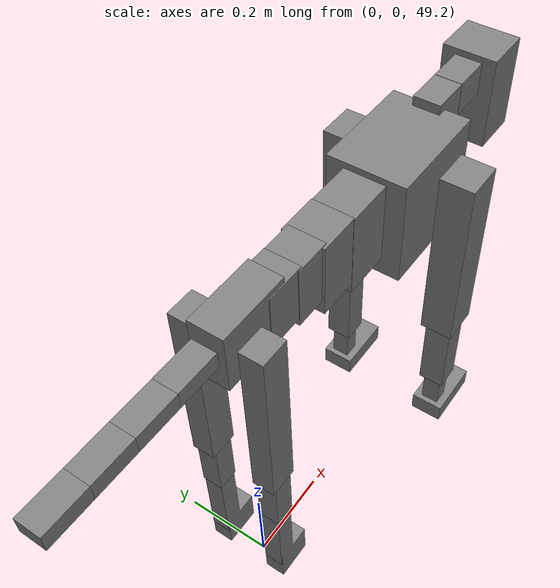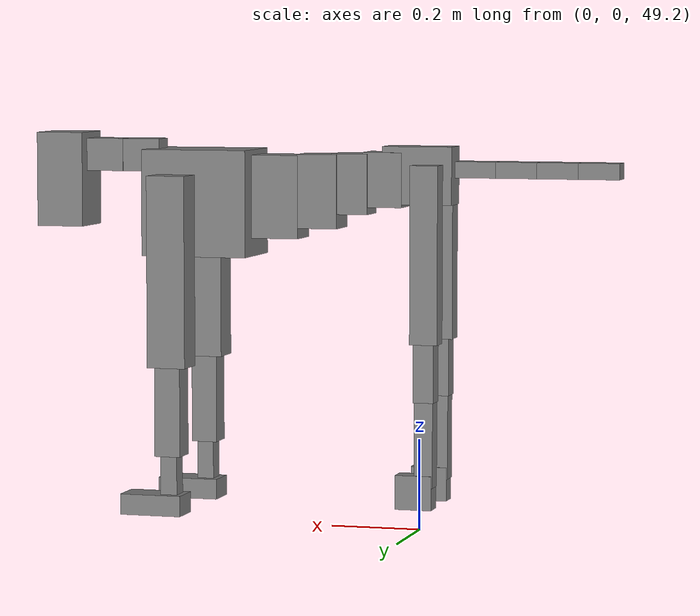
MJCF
<mujoco model="dog">

    <default>
        <joint armature="0.02" stiffness="1" damping="0.2" limited="true"/>
        <geom condim="3" friction="1 0.05 0.05" margin="0.01"/>
        <motor ctrllimited="true" ctrlrange="-1.0 1.0" forcelimited="true" gear="50"/>
    </default>

    <compiler inertiafromgeom="true" angle="radian"/>

    <option timestep="0.016" iterations="50" tolerance="1e-10" solver="Newton" jacobian="dense" cone="pyramidal"/>

    <size nconmax="20000" njmax="60000" nstack="5000000"/>
    <visual>
        <map force="0.1" zfar="30"/>
        <rgba haze="0.15 0.25 0.35 1"/>
        <quality shadowsize="2048"/>
        <global offwidth="800" offheight="800"/>
    </visual>

    <asset>
        <texture type="skybox" builtin="gradient" rgb1="0.3 0.5 0.7" rgb2="0 0 0" width="512" height="512"/>
        <texture name="texplane" type="2d" builtin="checker" rgb1=".2 .3 .4" rgb2=".1 0.15 0.2" width="512" height="512"
                 mark="cross" markrgb=".8 .8 .8"/>
        <texture name="texgeom" type="cube" builtin="flat" mark="cross" width="127" height="1278" rgb1="0.8 0.6 0.4"
                 rgb2="0.8 0.6 0.4" markrgb="1 1 1" random="0.01"/>

        <material name="matplane" reflectance="0.3" texture="texplane" texrepeat="1 1" texuniform="true"/>
        <material name="matgeom" texture="texgeom" texuniform="true" rgba="0.8 0.6 .4 1"/>
    </asset>

    <worldbody>
        <geom name="floor" pos="0 0 0" size="0 0 .25" type="plane" material="matplane" condim="3"/>

        <light directional="false" diffuse=".2 .2 .2" specular="0 0 0" pos="0 0 5" dir="0 0 -1" castshadow="false"/>
        <light mode="targetbodycom" target="torso" directional="false" diffuse=".8 .8 .8" specular="0.3 0.3 0.3"
               pos="0 0 4.0" dir="0 0 -1"/>

        <body name="root" pos="0 0 50">
            <freejoint name="root_1"/>
            <geom type="box" pos="0 0 -0.02" size="0.0774  0.0358  0.063" density="2030"/>

            <body name="spine1" pos="0.054 0 0">
                <joint name="spine1_y" axis="0 1 0" range="0 0.7" limited="true"/>
                <geom type="box" pos="0.02375 0 -0.03" size="0.04375  0.0375  0.05985" density="2030"/>

                <body name="spine2" pos="0.0612 0 0">
                    <joint name="spine2_y" axis="0 1 0" range="-0.15 0.15" limited="true"/>
                    <geom type="box" pos="0.03555  0  -0.04" size="0.04055  0.039  0.06615" density="2030"/>

                    <body name="spine3" pos="0.0730 0 0">
                        <joint name="spine3_y" axis="0 1 0" range="-0.15 0.15" limited="true"/>
                        <geom type="box" pos="0.03555  0  -0.057" size="0.04555  0.0445  0.081" density="2030"/>

                        <body name="spine4" pos="0.0780 0 0">
                            <joint name="spine4_y" axis="0 1 0" range="-0.15 0.15" limited="true"/>
                            <geom type="box" pos="0.05265  0  -0.07" size="0.05265  0.045  0.09135" density="2030"/>

                            <body name="torso" pos="0.1082 0 0">
                                <joint name="torso_y" axis="0 1 0" range="-0.15 0.15" limited="true"/>
                                <geom type="box" pos="0.11925  0  -0.085" size="0.11925  0.085  0.11745"
                                      density="2030"/>

                                <body name="neck1" pos="0.2160  0   0.0180">
                                    <joint name="neck1_y" axis="0 1 0" range="-1.2  -1" limited="true"/>
                                    <geom type="box" pos="0.0423  0  0" size="0.0423  0.03  0.036" density="2325"/>

                                    <body name="neck2" pos="0.0853  0  0">
                                        <joint name="neck2_y" axis="0 1 0" range="0.1  0" limited="true"/>
                                        <geom type="box" pos="0.0423  0  0" size="0.0423  0.03  0.036" density="2325"/>

                                        <body name="head" pos="0.0853  0  0">
                                            <joint name="head_y" axis="0 1 0" range="-0.3  -0.2" limited="true"/>
                                            <geom type="box" pos="0.0531  0  -0.055" size="0.0531  0.06  0.1044"
                                                  density="4030"/>

                                        </body>
                                    </body>
                                </body>

                                <body name="front_shoulder" pos="0.156  0   -0.0480">
                                    <joint name="front_shoulder_y" axis="0 1 0" range="-1 1.5" limited="true"/>
                                    <geom type="box" pos="0 0.13 -0.1833" size="0.0430  0.0368  0.2099" density="1158"/>
                                    <geom type="box" pos="0 -0.13 -0.1833" size="0.0430  0.0368  0.2099"
                                          density="1158"/>

                                    <body name="front_elbow" pos="0  0  -0.3666">
                                        <joint name="front_elbow_y" axis="0 1 0" range="-2 0" limited="true"/>
                                        <geom type="box" pos="0 0.13 -0.1112" size="0.0289  0.0295  0.1112"
                                              density="1081"/>
                                        <geom type="box" pos="0 -0.13 -0.1112" size="0.0289  0.0295  0.1112"
                                              density="1081"/>

                                        <body name="front_wrist" pos="0  0  -0.2223">
                                            <joint name="front_wrist_y" axis="0 1 0" range="-0.2 0" limited="true"/>
                                            <geom type="box" pos="0 0.13 -0.0501" size="0.0185  0.0206  0.0632"
                                                  density="1664"/>
                                            <geom type="box" pos="0 -0.13 -0.0501" size="0.0185  0.0206  0.0632"
                                                  density="1664"/>

                                            <body name="front_finger_end" pos="0  0  -0.1001">
                                                <joint name="front_finger_y" axis="0 1 0" range="-0.4 1"
                                                       limited="true"/>
                                                <geom type="box" pos="0.0376  0.13  -0.0077"
                                                      size="0.0689  0.0376  0.0227" density="1515"/>
                                                <geom type="box" pos="0.0376  -0.13  -0.0077"
                                                      size="0.0689  0.0376  0.0227" density="1515"/>

                                            </body>

                                        </body>
                                    </body>
                                </body>

                            </body>
                        </body>
                    </body>
                </body>
            </body>

            <body name="back_hip" pos="-0.03 0 -0.018">
                <joint name="back_hip_y" axis="0 1 0" range="-1.5 0.3" limited="true"/>
                <geom type="box" pos="0 0.07 -0.1704" size="0.0305  0.0240  0.1932" density="1154"/>
                <geom type="box" pos="0 -0.07 -0.1704" size="0.0305  0.0240  0.1932" density="1154"/>

                <body name="back_knee" pos="0  0  -0.3409">
                    <joint name="back_knee_y" axis="0 1 0" range="0 2.8" limited="true"/>
                    <geom type="box" pos="0 0.07 -0.0664" size="0.0226  0.0223  0.0819" density="1227"/>
                    <geom type="box" pos="0 -0.07 -0.0664" size="0.0226  0.0223  0.0819" density="1227"/>

                    <body name="back_ankle" pos="0  0  -0.1328">
                        <joint name="back_ankle_y" axis="0 1 0" range="-2.2 0" limited="true"/>
                        <geom type="box" pos="0 0.07 -0.0952" size="0.0204  0.0204  0.1064" density="1284"/>
                        <geom type="box" pos="0 -0.07 -0.0952" size="0.0204  0.0204  0.1064" density="1284"/>

                        <body name="back_toe_end" pos="0  0  -0.1903">
                            <joint name="back_toe_y" axis="0 1 0" range="-0.4 1" limited="true"/>
                            <geom type="box" pos="0.0219  0.07  -0.0224" size="0.0402  0.0219  0.0374" density="1515"/>
                            <geom type="box" pos="0.0219  -0.07  -0.0224" size="0.0402  0.0219  0.0374" density="1515"/>

                        </body>
                    </body>
                </body>
            </body>

            <body name="tail1" pos="-0.074 0 -0.006">
                <joint name="tail1_y" axis="0 1 0" range="-0.2 0.2" limited="true"/>
                <geom type="box" pos="-0.0536  0  0" size="0.045  0.025  0.0175" density="1587"/>

                <body name="tail2" pos="-0.09 0 0">
                    <joint name="tail2_y" axis="0 1 0" range="-0.2 0.2" limited="true"/>
                    <geom type="box" pos="-0.0536  0  0" size="0.045  0.025  0.0175" density="1587"/>

                    <body name="tail3" pos="-0.09 0 0">
                        <joint name="tail3_y" axis="0 1 0" range="-0.2 0.2" limited="true"/>
                        <geom type="box" pos="-0.0536  0  0" size="0.045  0.025  0.0175" density="1587"/>

                        <body name="tail4" pos="-0.09 0 0">
                            <joint name="tail4_y" axis="0 1 0" range="-0.2 0.2" limited="true"/>
                            <geom type="box" pos="-0.0536  0  0" size="0.045  0.025  0.0175" density="1587"/>

                        </body>
                    </body>
                </body>
            </body>
        </body>
    </worldbody>

    <actuator>
        <motor joint="spine1_y" forcerange="-150 150     "/>
        <motor joint="spine2_y" forcerange="-150 150     "/>
        <motor joint="spine3_y" forcerange="-150 150     "/>
        <motor joint="spine4_y" forcerange="-150 150     "/>
        <motor joint="torso_y" forcerange="-150 150     "/>
        <motor joint="neck1_y" forcerange="-100 100       "/>
        <motor joint="neck2_y" forcerange="-100 100       "/>
        <motor joint="head_y" forcerange="-150 150       "/>
        <motor joint="front_shoulder_y" forcerange="-198.97 146.31"/>
        <motor joint="front_elbow_y" forcerange="-183.63 130.87"/>
        <motor joint="front_wrist_y" forcerange="-104.23 60.48"/>
        <motor joint="front_finger_y" forcerange="-98.87 61.49"/>
        <motor joint="back_hip_y" forcerange="-265.48 253.99"/>
        <motor joint="back_knee_y" forcerange="-225.67 298.35"/>
        <motor joint="back_angle_y" forcerange="-111.14 115.83"/>
        <motor joint="back_toe_y" forcerange="-44.80 50.62"/>
        <motor joint="tail1_y" forcerange="-50 50     "/>
        <motor joint="tail2_y" forcerange="-50 50     "/>
        <motor joint="tail3_y" forcerange="-50 50     "/>
        <motor joint="tail4_y" forcerange="-50 50     "/>
    </actuator>
</mujoco>
